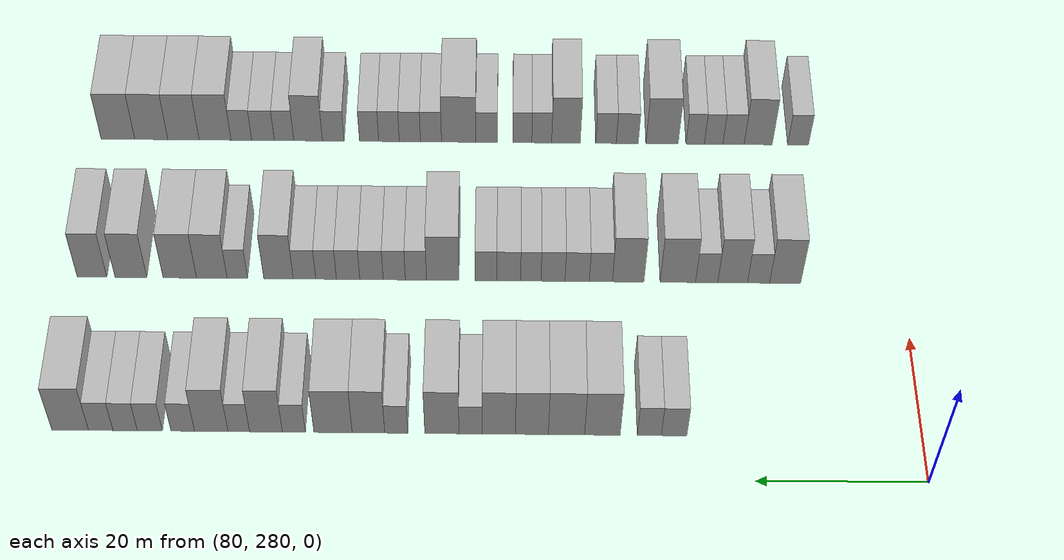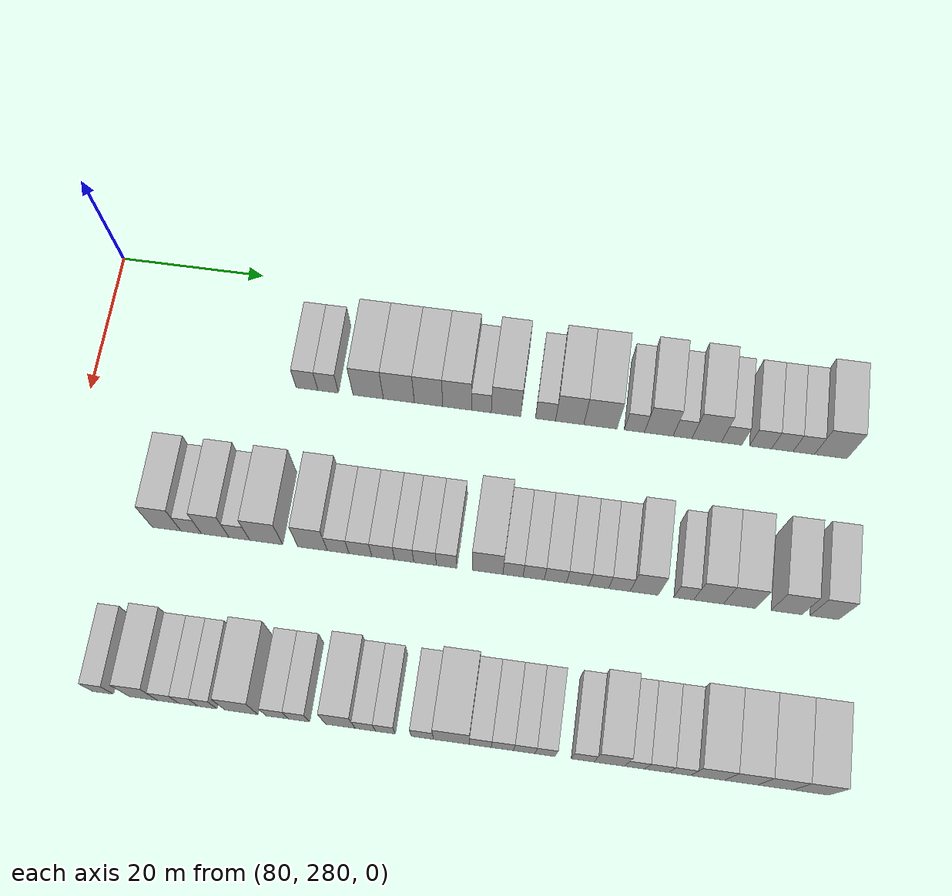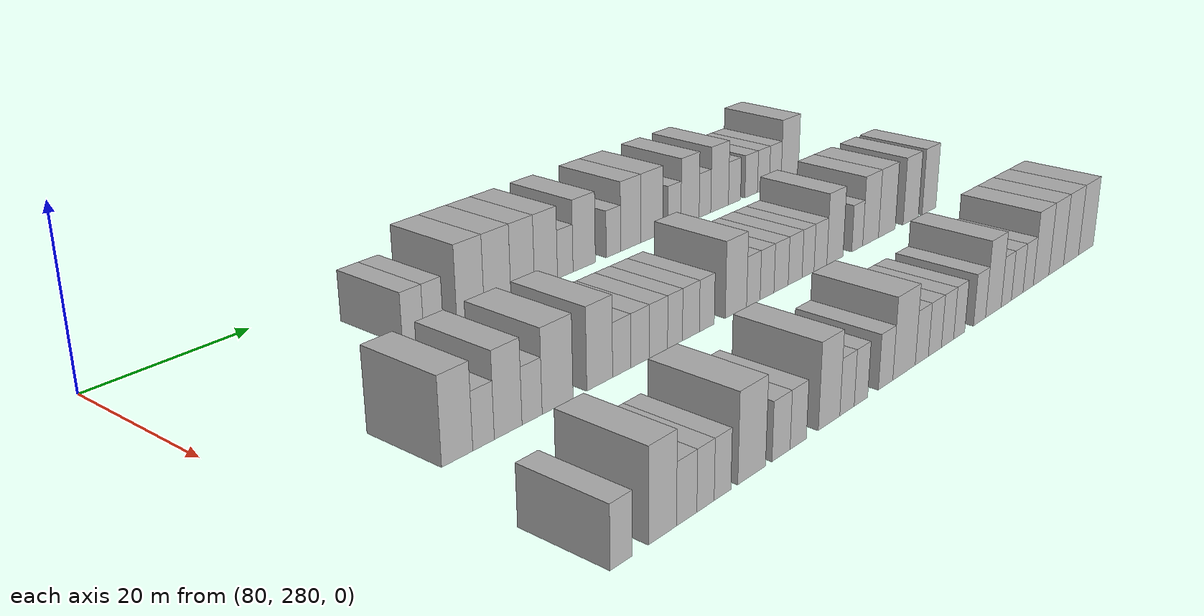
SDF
<sdf version="1.6">
 <world name="default">
  <model name="building_737">
   <static>1</static>
   <pose>91.0000 309.1152 0 0.000000 0.000000 0.000000</pose>
   <link name="link">
    <pose>0 0 3.00 0 0 0</pose>
    <collision name="collision"><geometry><box><size>10.0000 2.9916 6.0000</size></box></geometry></collision>
    <visual name="visual">
     <cast_shadows>0</cast_shadows>
     <geometry><box><size>10.0000 2.9916 6.0000</size></box></geometry>
     <material>
      <script>
       <uri>model://HANNAS_wall/materials/scripts</uri>
       <uri>model://HANNAS_wall/materials/textures</uri>
       <name>vrc/HANNAS_wall</name>
      </script>
     </material>
    </visual>
   </link>
  </model>
  <model name="building_738">
   <static>1</static>
   <pose>91.0000 312.0188 0 0.000000 0.000000 0.000000</pose>
   <link name="link">
    <pose>0 0 3.00 0 0 0</pose>
    <collision name="collision"><geometry><box><size>10.0000 2.8155 6.0000</size></box></geometry></collision>
    <visual name="visual">
     <cast_shadows>0</cast_shadows>
     <geometry><box><size>10.0000 2.8155 6.0000</size></box></geometry>
     <material>
      <script>
       <uri>model://HANNAS_wall/materials/scripts</uri>
       <uri>model://HANNAS_wall/materials/textures</uri>
       <name>vrc/HANNAS_wall</name>
      </script>
     </material>
    </visual>
   </link>
  </model>
  <model name="building_739">
   <static>1</static>
   <pose>91.0000 317.5095 0 0.000000 0.000000 0.000000</pose>
   <link name="link">
    <pose>0 0 4.50 0 0 0</pose>
    <collision name="collision"><geometry><box><size>10.0000 4.1660 9.0000</size></box></geometry></collision>
    <visual name="visual">
     <cast_shadows>0</cast_shadows>
     <geometry><box><size>10.0000 4.1660 9.0000</size></box></geometry>
     <material>
      <script>
       <uri>model://HANNAS_wall/materials/scripts</uri>
       <uri>model://HANNAS_wall/materials/textures</uri>
       <name>vrc/HANNAS_wall</name>
      </script>
     </material>
    </visual>
   </link>
  </model>
  <model name="building_740">
   <static>1</static>
   <pose>91.0000 321.7118 0 0.000000 0.000000 0.000000</pose>
   <link name="link">
    <pose>0 0 4.50 0 0 0</pose>
    <collision name="collision"><geometry><box><size>10.0000 4.2386 9.0000</size></box></geometry></collision>
    <visual name="visual">
     <cast_shadows>0</cast_shadows>
     <geometry><box><size>10.0000 4.2386 9.0000</size></box></geometry>
     <material>
      <script>
       <uri>model://HANNAS_wall/materials/scripts</uri>
       <uri>model://HANNAS_wall/materials/textures</uri>
       <name>vrc/HANNAS_wall</name>
      </script>
     </material>
    </visual>
   </link>
  </model>
  <model name="building_741">
   <static>1</static>
   <pose>91.0000 325.7674 0 0.000000 0.000000 0.000000</pose>
   <link name="link">
    <pose>0 0 4.50 0 0 0</pose>
    <collision name="collision"><geometry><box><size>10.0000 3.8725 9.0000</size></box></geometry></collision>
    <visual name="visual">
     <cast_shadows>0</cast_shadows>
     <geometry><box><size>10.0000 3.8725 9.0000</size></box></geometry>
     <material>
      <script>
       <uri>model://HANNAS_wall/materials/scripts</uri>
       <uri>model://HANNAS_wall/materials/textures</uri>
       <name>vrc/HANNAS_wall</name>
      </script>
     </material>
    </visual>
   </link>
  </model>
  <model name="building_742">
   <static>1</static>
   <pose>91.0000 329.6491 0 0.000000 0.000000 0.000000</pose>
   <link name="link">
    <pose>0 0 4.50 0 0 0</pose>
    <collision name="collision"><geometry><box><size>10.0000 3.8909 9.0000</size></box></geometry></collision>
    <visual name="visual">
     <cast_shadows>0</cast_shadows>
     <geometry><box><size>10.0000 3.8909 9.0000</size></box></geometry>
     <material>
      <script>
       <uri>model://HANNAS_wall/materials/scripts</uri>
       <uri>model://HANNAS_wall/materials/textures</uri>
       <name>vrc/HANNAS_wall</name>
      </script>
     </material>
    </visual>
   </link>
  </model>
  <model name="building_743">
   <static>1</static>
   <pose>91.0000 332.9498 0 0.000000 0.000000 0.000000</pose>
   <link name="link">
    <pose>0 0 3.00 0 0 0</pose>
    <collision name="collision"><geometry><box><size>10.0000 2.7106 6.0000</size></box></geometry></collision>
    <visual name="visual">
     <cast_shadows>0</cast_shadows>
     <geometry><box><size>10.0000 2.7106 6.0000</size></box></geometry>
     <material>
      <script>
       <uri>model://HANNAS_wall/materials/scripts</uri>
       <uri>model://HANNAS_wall/materials/textures</uri>
       <name>vrc/HANNAS_wall</name>
      </script>
     </material>
    </visual>
   </link>
  </model>
  <model name="building_744">
   <static>1</static>
   <pose>91.0000 336.3039 0 0.000000 0.000000 0.000000</pose>
   <link name="link">
    <pose>0 0 4.50 0 0 0</pose>
    <collision name="collision"><geometry><box><size>10.0000 3.9976 9.0000</size></box></geometry></collision>
    <visual name="visual">
     <cast_shadows>0</cast_shadows>
     <geometry><box><size>10.0000 3.9976 9.0000</size></box></geometry>
     <material>
      <script>
       <uri>model://HANNAS_wall/materials/scripts</uri>
       <uri>model://HANNAS_wall/materials/textures</uri>
       <name>vrc/HANNAS_wall</name>
      </script>
     </material>
    </visual>
   </link>
  </model>
  <model name="building_745">
   <static>1</static>
   <pose>91.0000 341.6554 0 0.000000 0.000000 0.000000</pose>
   <link name="link">
    <pose>0 0 3.00 0 0 0</pose>
    <collision name="collision"><geometry><box><size>10.0000 2.7054 6.0000</size></box></geometry></collision>
    <visual name="visual">
     <cast_shadows>0</cast_shadows>
     <geometry><box><size>10.0000 2.7054 6.0000</size></box></geometry>
     <material>
      <script>
       <uri>model://HANNAS_wall/materials/scripts</uri>
       <uri>model://HANNAS_wall/materials/textures</uri>
       <name>vrc/HANNAS_wall</name>
      </script>
     </material>
    </visual>
   </link>
  </model>
  <model name="building_746">
   <static>1</static>
   <pose>91.0000 344.9199 0 0.000000 0.000000 0.000000</pose>
   <link name="link">
    <pose>0 0 4.50 0 0 0</pose>
    <collision name="collision"><geometry><box><size>10.0000 3.8235 9.0000</size></box></geometry></collision>
    <visual name="visual">
     <cast_shadows>0</cast_shadows>
     <geometry><box><size>10.0000 3.8235 9.0000</size></box></geometry>
     <material>
      <script>
       <uri>model://HANNAS_wall/materials/scripts</uri>
       <uri>model://HANNAS_wall/materials/textures</uri>
       <name>vrc/HANNAS_wall</name>
      </script>
     </material>
    </visual>
   </link>
  </model>
  <model name="building_747">
   <static>1</static>
   <pose>91.0000 349.0684 0 0.000000 0.000000 0.000000</pose>
   <link name="link">
    <pose>0 0 4.50 0 0 0</pose>
    <collision name="collision"><geometry><box><size>10.0000 4.4735 9.0000</size></box></geometry></collision>
    <visual name="visual">
     <cast_shadows>0</cast_shadows>
     <geometry><box><size>10.0000 4.4735 9.0000</size></box></geometry>
     <material>
      <script>
       <uri>model://HANNAS_wall/materials/scripts</uri>
       <uri>model://HANNAS_wall/materials/textures</uri>
       <name>vrc/HANNAS_wall</name>
      </script>
     </material>
    </visual>
   </link>
  </model>
  <model name="building_748">
   <static>1</static>
   <pose>91.0000 353.6554 0 0.000000 0.000000 0.000000</pose>
   <link name="link">
    <pose>0 0 3.00 0 0 0</pose>
    <collision name="collision"><geometry><box><size>10.0000 2.7005 6.0000</size></box></geometry></collision>
    <visual name="visual">
     <cast_shadows>0</cast_shadows>
     <geometry><box><size>10.0000 2.7005 6.0000</size></box></geometry>
     <material>
      <script>
       <uri>model://HANNAS_wall/materials/scripts</uri>
       <uri>model://HANNAS_wall/materials/textures</uri>
       <name>vrc/HANNAS_wall</name>
      </script>
     </material>
    </visual>
   </link>
  </model>
  <model name="building_749">
   <static>1</static>
   <pose>91.0000 356.9288 0 0.000000 0.000000 0.000000</pose>
   <link name="link">
    <pose>0 0 4.50 0 0 0</pose>
    <collision name="collision"><geometry><box><size>10.0000 3.8464 9.0000</size></box></geometry></collision>
    <visual name="visual">
     <cast_shadows>0</cast_shadows>
     <geometry><box><size>10.0000 3.8464 9.0000</size></box></geometry>
     <material>
      <script>
       <uri>model://HANNAS_wall/materials/scripts</uri>
       <uri>model://HANNAS_wall/materials/textures</uri>
       <name>vrc/HANNAS_wall</name>
      </script>
     </material>
    </visual>
   </link>
  </model>
  <model name="building_750">
   <static>1</static>
   <pose>91.0000 360.1175 0 0.000000 0.000000 0.000000</pose>
   <link name="link">
    <pose>0 0 3.00 0 0 0</pose>
    <collision name="collision"><geometry><box><size>10.0000 2.5309 6.0000</size></box></geometry></collision>
    <visual name="visual">
     <cast_shadows>0</cast_shadows>
     <geometry><box><size>10.0000 2.5309 6.0000</size></box></geometry>
     <material>
      <script>
       <uri>model://HANNAS_wall/materials/scripts</uri>
       <uri>model://HANNAS_wall/materials/textures</uri>
       <name>vrc/HANNAS_wall</name>
      </script>
     </material>
    </visual>
   </link>
  </model>
  <model name="building_751">
   <static>1</static>
   <pose>91.0000 363.3502 0 0.000000 0.000000 0.000000</pose>
   <link name="link">
    <pose>0 0 4.50 0 0 0</pose>
    <collision name="collision"><geometry><box><size>10.0000 3.9344 9.0000</size></box></geometry></collision>
    <visual name="visual">
     <cast_shadows>0</cast_shadows>
     <geometry><box><size>10.0000 3.9344 9.0000</size></box></geometry>
     <material>
      <script>
       <uri>model://HANNAS_wall/materials/scripts</uri>
       <uri>model://HANNAS_wall/materials/textures</uri>
       <name>vrc/HANNAS_wall</name>
      </script>
     </material>
    </visual>
   </link>
  </model>
  <model name="building_752">
   <static>1</static>
   <pose>91.0000 366.7020 0 0.000000 0.000000 0.000000</pose>
   <link name="link">
    <pose>0 0 3.00 0 0 0</pose>
    <collision name="collision"><geometry><box><size>10.0000 2.7694 6.0000</size></box></geometry></collision>
    <visual name="visual">
     <cast_shadows>0</cast_shadows>
     <geometry><box><size>10.0000 2.7694 6.0000</size></box></geometry>
     <material>
      <script>
       <uri>model://HANNAS_wall/materials/scripts</uri>
       <uri>model://HANNAS_wall/materials/textures</uri>
       <name>vrc/HANNAS_wall</name>
      </script>
     </material>
    </visual>
   </link>
  </model>
  <model name="building_753">
   <static>1</static>
   <pose>91.0000 370.5611 0 0.000000 0.000000 0.000000</pose>
   <link name="link">
    <pose>0 0 3.00 0 0 0</pose>
    <collision name="collision"><geometry><box><size>10.0000 2.9487 6.0000</size></box></geometry></collision>
    <visual name="visual">
     <cast_shadows>0</cast_shadows>
     <geometry><box><size>10.0000 2.9487 6.0000</size></box></geometry>
     <material>
      <script>
       <uri>model://HANNAS_wall/materials/scripts</uri>
       <uri>model://HANNAS_wall/materials/textures</uri>
       <name>vrc/HANNAS_wall</name>
      </script>
     </material>
    </visual>
   </link>
  </model>
  <model name="building_754">
   <static>1</static>
   <pose>91.0000 373.4642 0 0.000000 0.000000 0.000000</pose>
   <link name="link">
    <pose>0 0 3.00 0 0 0</pose>
    <collision name="collision"><geometry><box><size>10.0000 2.8574 6.0000</size></box></geometry></collision>
    <visual name="visual">
     <cast_shadows>0</cast_shadows>
     <geometry><box><size>10.0000 2.8574 6.0000</size></box></geometry>
     <material>
      <script>
       <uri>model://HANNAS_wall/materials/scripts</uri>
       <uri>model://HANNAS_wall/materials/textures</uri>
       <name>vrc/HANNAS_wall</name>
      </script>
     </material>
    </visual>
   </link>
  </model>
  <model name="building_755">
   <static>1</static>
   <pose>91.0000 376.3297 0 0.000000 0.000000 0.000000</pose>
   <link name="link">
    <pose>0 0 3.00 0 0 0</pose>
    <collision name="collision"><geometry><box><size>10.0000 2.8737 6.0000</size></box></geometry></collision>
    <visual name="visual">
     <cast_shadows>0</cast_shadows>
     <geometry><box><size>10.0000 2.8737 6.0000</size></box></geometry>
     <material>
      <script>
       <uri>model://HANNAS_wall/materials/scripts</uri>
       <uri>model://HANNAS_wall/materials/textures</uri>
       <name>vrc/HANNAS_wall</name>
      </script>
     </material>
    </visual>
   </link>
  </model>
  <model name="building_756">
   <static>1</static>
   <pose>91.0000 379.9268 0 0.000000 0.000000 0.000000</pose>
   <link name="link">
    <pose>0 0 4.50 0 0 0</pose>
    <collision name="collision"><geometry><box><size>10.0000 4.3204 9.0000</size></box></geometry></collision>
    <visual name="visual">
     <cast_shadows>0</cast_shadows>
     <geometry><box><size>10.0000 4.3204 9.0000</size></box></geometry>
     <material>
      <script>
       <uri>model://HANNAS_wall/materials/scripts</uri>
       <uri>model://HANNAS_wall/materials/textures</uri>
       <name>vrc/HANNAS_wall</name>
      </script>
     </material>
    </visual>
   </link>
  </model>
  <model name="building_928">
   <static>1</static>
   <pose>113.0000 294.4812 0 0.000000 0.000000 0.000000</pose>
   <link name="link">
    <pose>0 0 4.50 0 0 0</pose>
    <collision name="collision"><geometry><box><size>10.0000 3.8361 9.0000</size></box></geometry></collision>
    <visual name="visual">
     <cast_shadows>0</cast_shadows>
     <geometry><box><size>10.0000 3.8361 9.0000</size></box></geometry>
     <material>
      <script>
       <uri>model://HANNAS_wall/materials/scripts</uri>
       <uri>model://HANNAS_wall/materials/textures</uri>
       <name>vrc/HANNAS_wall</name>
      </script>
     </material>
    </visual>
   </link>
  </model>
  <model name="building_929">
   <static>1</static>
   <pose>113.0000 297.7650 0 0.000000 0.000000 0.000000</pose>
   <link name="link">
    <pose>0 0 3.00 0 0 0</pose>
    <collision name="collision"><geometry><box><size>10.0000 2.7315 6.0000</size></box></geometry></collision>
    <visual name="visual">
     <cast_shadows>0</cast_shadows>
     <geometry><box><size>10.0000 2.7315 6.0000</size></box></geometry>
     <material>
      <script>
       <uri>model://HANNAS_wall/materials/scripts</uri>
       <uri>model://HANNAS_wall/materials/textures</uri>
       <name>vrc/HANNAS_wall</name>
      </script>
     </material>
    </visual>
   </link>
  </model>
  <model name="building_930">
   <static>1</static>
   <pose>113.0000 300.9545 0 0.000000 0.000000 0.000000</pose>
   <link name="link">
    <pose>0 0 4.50 0 0 0</pose>
    <collision name="collision"><geometry><box><size>10.0000 3.6475 9.0000</size></box></geometry></collision>
    <visual name="visual">
     <cast_shadows>0</cast_shadows>
     <geometry><box><size>10.0000 3.6475 9.0000</size></box></geometry>
     <material>
      <script>
       <uri>model://HANNAS_wall/materials/scripts</uri>
       <uri>model://HANNAS_wall/materials/textures</uri>
       <name>vrc/HANNAS_wall</name>
      </script>
     </material>
    </visual>
   </link>
  </model>
  <model name="building_931">
   <static>1</static>
   <pose>113.0000 304.1502 0 0.000000 0.000000 0.000000</pose>
   <link name="link">
    <pose>0 0 3.00 0 0 0</pose>
    <collision name="collision"><geometry><box><size>10.0000 2.7439 6.0000</size></box></geometry></collision>
    <visual name="visual">
     <cast_shadows>0</cast_shadows>
     <geometry><box><size>10.0000 2.7439 6.0000</size></box></geometry>
     <material>
      <script>
       <uri>model://HANNAS_wall/materials/scripts</uri>
       <uri>model://HANNAS_wall/materials/textures</uri>
       <name>vrc/HANNAS_wall</name>
      </script>
     </material>
    </visual>
   </link>
  </model>
  <model name="building_932">
   <static>1</static>
   <pose>113.0000 307.7069 0 0.000000 0.000000 0.000000</pose>
   <link name="link">
    <pose>0 0 4.50 0 0 0</pose>
    <collision name="collision"><geometry><box><size>10.0000 4.3695 9.0000</size></box></geometry></collision>
    <visual name="visual">
     <cast_shadows>0</cast_shadows>
     <geometry><box><size>10.0000 4.3695 9.0000</size></box></geometry>
     <material>
      <script>
       <uri>model://HANNAS_wall/materials/scripts</uri>
       <uri>model://HANNAS_wall/materials/textures</uri>
       <name>vrc/HANNAS_wall</name>
      </script>
     </material>
    </visual>
   </link>
  </model>
  <model name="building_933">
   <static>1</static>
   <pose>113.0000 313.8389 0 0.000000 0.000000 0.000000</pose>
   <link name="link">
    <pose>0 0 4.50 0 0 0</pose>
    <collision name="collision"><geometry><box><size>10.0000 3.8944 9.0000</size></box></geometry></collision>
    <visual name="visual">
     <cast_shadows>0</cast_shadows>
     <geometry><box><size>10.0000 3.8944 9.0000</size></box></geometry>
     <material>
      <script>
       <uri>model://HANNAS_wall/materials/scripts</uri>
       <uri>model://HANNAS_wall/materials/textures</uri>
       <name>vrc/HANNAS_wall</name>
      </script>
     </material>
    </visual>
   </link>
  </model>
  <model name="building_934">
   <static>1</static>
   <pose>113.0000 317.2094 0 0.000000 0.000000 0.000000</pose>
   <link name="link">
    <pose>0 0 3.00 0 0 0</pose>
    <collision name="collision"><geometry><box><size>10.0000 2.8466 6.0000</size></box></geometry></collision>
    <visual name="visual">
     <cast_shadows>0</cast_shadows>
     <geometry><box><size>10.0000 2.8466 6.0000</size></box></geometry>
     <material>
      <script>
       <uri>model://HANNAS_wall/materials/scripts</uri>
       <uri>model://HANNAS_wall/materials/textures</uri>
       <name>vrc/HANNAS_wall</name>
      </script>
     </material>
    </visual>
   </link>
  </model>
  <model name="building_935">
   <static>1</static>
   <pose>113.0000 320.1281 0 0.000000 0.000000 0.000000</pose>
   <link name="link">
    <pose>0 0 3.00 0 0 0</pose>
    <collision name="collision"><geometry><box><size>10.0000 2.9910 6.0000</size></box></geometry></collision>
    <visual name="visual">
     <cast_shadows>0</cast_shadows>
     <geometry><box><size>10.0000 2.9910 6.0000</size></box></geometry>
     <material>
      <script>
       <uri>model://HANNAS_wall/materials/scripts</uri>
       <uri>model://HANNAS_wall/materials/textures</uri>
       <name>vrc/HANNAS_wall</name>
      </script>
     </material>
    </visual>
   </link>
  </model>
  <model name="building_936">
   <static>1</static>
   <pose>113.0000 323.1129 0 0.000000 0.000000 0.000000</pose>
   <link name="link">
    <pose>0 0 3.00 0 0 0</pose>
    <collision name="collision"><geometry><box><size>10.0000 2.9786 6.0000</size></box></geometry></collision>
    <visual name="visual">
     <cast_shadows>0</cast_shadows>
     <geometry><box><size>10.0000 2.9786 6.0000</size></box></geometry>
     <material>
      <script>
       <uri>model://HANNAS_wall/materials/scripts</uri>
       <uri>model://HANNAS_wall/materials/textures</uri>
       <name>vrc/HANNAS_wall</name>
      </script>
     </material>
    </visual>
   </link>
  </model>
  <model name="building_937">
   <static>1</static>
   <pose>113.0000 325.8634 0 0.000000 0.000000 0.000000</pose>
   <link name="link">
    <pose>0 0 3.00 0 0 0</pose>
    <collision name="collision"><geometry><box><size>10.0000 2.5224 6.0000</size></box></geometry></collision>
    <visual name="visual">
     <cast_shadows>0</cast_shadows>
     <geometry><box><size>10.0000 2.5224 6.0000</size></box></geometry>
     <material>
      <script>
       <uri>model://HANNAS_wall/materials/scripts</uri>
       <uri>model://HANNAS_wall/materials/textures</uri>
       <name>vrc/HANNAS_wall</name>
      </script>
     </material>
    </visual>
   </link>
  </model>
  <model name="building_938">
   <static>1</static>
   <pose>113.0000 328.5968 0 0.000000 0.000000 0.000000</pose>
   <link name="link">
    <pose>0 0 3.00 0 0 0</pose>
    <collision name="collision"><geometry><box><size>10.0000 2.9442 6.0000</size></box></geometry></collision>
    <visual name="visual">
     <cast_shadows>0</cast_shadows>
     <geometry><box><size>10.0000 2.9442 6.0000</size></box></geometry>
     <material>
      <script>
       <uri>model://HANNAS_wall/materials/scripts</uri>
       <uri>model://HANNAS_wall/materials/textures</uri>
       <name>vrc/HANNAS_wall</name>
      </script>
     </material>
    </visual>
   </link>
  </model>
  <model name="building_939">
   <static>1</static>
   <pose>113.0000 331.4020 0 0.000000 0.000000 0.000000</pose>
   <link name="link">
    <pose>0 0 3.00 0 0 0</pose>
    <collision name="collision"><geometry><box><size>10.0000 2.6662 6.0000</size></box></geometry></collision>
    <visual name="visual">
     <cast_shadows>0</cast_shadows>
     <geometry><box><size>10.0000 2.6662 6.0000</size></box></geometry>
     <material>
      <script>
       <uri>model://HANNAS_wall/materials/scripts</uri>
       <uri>model://HANNAS_wall/materials/textures</uri>
       <name>vrc/HANNAS_wall</name>
      </script>
     </material>
    </visual>
   </link>
  </model>
  <model name="building_940">
   <static>1</static>
   <pose>113.0000 336.7377 0 0.000000 0.000000 0.000000</pose>
   <link name="link">
    <pose>0 0 4.50 0 0 0</pose>
    <collision name="collision"><geometry><box><size>10.0000 4.0051 9.0000</size></box></geometry></collision>
    <visual name="visual">
     <cast_shadows>0</cast_shadows>
     <geometry><box><size>10.0000 4.0051 9.0000</size></box></geometry>
     <material>
      <script>
       <uri>model://HANNAS_wall/materials/scripts</uri>
       <uri>model://HANNAS_wall/materials/textures</uri>
       <name>vrc/HANNAS_wall</name>
      </script>
     </material>
    </visual>
   </link>
  </model>
  <model name="building_941">
   <static>1</static>
   <pose>113.0000 340.0426 0 0.000000 0.000000 0.000000</pose>
   <link name="link">
    <pose>0 0 3.00 0 0 0</pose>
    <collision name="collision"><geometry><box><size>10.0000 2.6046 6.0000</size></box></geometry></collision>
    <visual name="visual">
     <cast_shadows>0</cast_shadows>
     <geometry><box><size>10.0000 2.6046 6.0000</size></box></geometry>
     <material>
      <script>
       <uri>model://HANNAS_wall/materials/scripts</uri>
       <uri>model://HANNAS_wall/materials/textures</uri>
       <name>vrc/HANNAS_wall</name>
      </script>
     </material>
    </visual>
   </link>
  </model>
  <model name="building_942">
   <static>1</static>
   <pose>113.0000 342.7191 0 0.000000 0.000000 0.000000</pose>
   <link name="link">
    <pose>0 0 3.00 0 0 0</pose>
    <collision name="collision"><geometry><box><size>10.0000 2.7484 6.0000</size></box></geometry></collision>
    <visual name="visual">
     <cast_shadows>0</cast_shadows>
     <geometry><box><size>10.0000 2.7484 6.0000</size></box></geometry>
     <material>
      <script>
       <uri>model://HANNAS_wall/materials/scripts</uri>
       <uri>model://HANNAS_wall/materials/textures</uri>
       <name>vrc/HANNAS_wall</name>
      </script>
     </material>
    </visual>
   </link>
  </model>
  <model name="building_943">
   <static>1</static>
   <pose>113.0000 345.5380 0 0.000000 0.000000 0.000000</pose>
   <link name="link">
    <pose>0 0 3.00 0 0 0</pose>
    <collision name="collision"><geometry><box><size>10.0000 2.8893 6.0000</size></box></geometry></collision>
    <visual name="visual">
     <cast_shadows>0</cast_shadows>
     <geometry><box><size>10.0000 2.8893 6.0000</size></box></geometry>
     <material>
      <script>
       <uri>model://HANNAS_wall/materials/scripts</uri>
       <uri>model://HANNAS_wall/materials/textures</uri>
       <name>vrc/HANNAS_wall</name>
      </script>
     </material>
    </visual>
   </link>
  </model>
  <model name="building_944">
   <static>1</static>
   <pose>113.0000 348.4279 0 0.000000 0.000000 0.000000</pose>
   <link name="link">
    <pose>0 0 3.00 0 0 0</pose>
    <collision name="collision"><geometry><box><size>10.0000 2.8906 6.0000</size></box></geometry></collision>
    <visual name="visual">
     <cast_shadows>0</cast_shadows>
     <geometry><box><size>10.0000 2.8906 6.0000</size></box></geometry>
     <material>
      <script>
       <uri>model://HANNAS_wall/materials/scripts</uri>
       <uri>model://HANNAS_wall/materials/textures</uri>
       <name>vrc/HANNAS_wall</name>
      </script>
     </material>
    </visual>
   </link>
  </model>
  <model name="building_945">
   <static>1</static>
   <pose>113.0000 351.1479 0 0.000000 0.000000 0.000000</pose>
   <link name="link">
    <pose>0 0 3.00 0 0 0</pose>
    <collision name="collision"><geometry><box><size>10.0000 2.5495 6.0000</size></box></geometry></collision>
    <visual name="visual">
     <cast_shadows>0</cast_shadows>
     <geometry><box><size>10.0000 2.5495 6.0000</size></box></geometry>
     <material>
      <script>
       <uri>model://HANNAS_wall/materials/scripts</uri>
       <uri>model://HANNAS_wall/materials/textures</uri>
       <name>vrc/HANNAS_wall</name>
      </script>
     </material>
    </visual>
   </link>
  </model>
  <model name="building_946">
   <static>1</static>
   <pose>113.0000 353.8186 0 0.000000 0.000000 0.000000</pose>
   <link name="link">
    <pose>0 0 3.00 0 0 0</pose>
    <collision name="collision"><geometry><box><size>10.0000 2.7919 6.0000</size></box></geometry></collision>
    <visual name="visual">
     <cast_shadows>0</cast_shadows>
     <geometry><box><size>10.0000 2.7919 6.0000</size></box></geometry>
     <material>
      <script>
       <uri>model://HANNAS_wall/materials/scripts</uri>
       <uri>model://HANNAS_wall/materials/textures</uri>
       <name>vrc/HANNAS_wall</name>
      </script>
     </material>
    </visual>
   </link>
  </model>
  <model name="building_947">
   <static>1</static>
   <pose>113.0000 357.0328 0 0.000000 0.000000 0.000000</pose>
   <link name="link">
    <pose>0 0 4.50 0 0 0</pose>
    <collision name="collision"><geometry><box><size>10.0000 3.6365 9.0000</size></box></geometry></collision>
    <visual name="visual">
     <cast_shadows>0</cast_shadows>
     <geometry><box><size>10.0000 3.6365 9.0000</size></box></geometry>
     <material>
      <script>
       <uri>model://HANNAS_wall/materials/scripts</uri>
       <uri>model://HANNAS_wall/materials/textures</uri>
       <name>vrc/HANNAS_wall</name>
      </script>
     </material>
    </visual>
   </link>
  </model>
  <model name="building_948">
   <static>1</static>
   <pose>113.0000 362.1231 0 0.000000 0.000000 0.000000</pose>
   <link name="link">
    <pose>0 0 3.00 0 0 0</pose>
    <collision name="collision"><geometry><box><size>10.0000 2.5441 6.0000</size></box></geometry></collision>
    <visual name="visual">
     <cast_shadows>0</cast_shadows>
     <geometry><box><size>10.0000 2.5441 6.0000</size></box></geometry>
     <material>
      <script>
       <uri>model://HANNAS_wall/materials/scripts</uri>
       <uri>model://HANNAS_wall/materials/textures</uri>
       <name>vrc/HANNAS_wall</name>
      </script>
     </material>
    </visual>
   </link>
  </model>
  <model name="building_949">
   <static>1</static>
   <pose>113.0000 365.2894 0 0.000000 0.000000 0.000000</pose>
   <link name="link">
    <pose>0 0 4.50 0 0 0</pose>
    <collision name="collision"><geometry><box><size>10.0000 3.7884 9.0000</size></box></geometry></collision>
    <visual name="visual">
     <cast_shadows>0</cast_shadows>
     <geometry><box><size>10.0000 3.7884 9.0000</size></box></geometry>
     <material>
      <script>
       <uri>model://HANNAS_wall/materials/scripts</uri>
       <uri>model://HANNAS_wall/materials/textures</uri>
       <name>vrc/HANNAS_wall</name>
      </script>
     </material>
    </visual>
   </link>
  </model>
  <model name="building_950">
   <static>1</static>
   <pose>113.0000 369.2505 0 0.000000 0.000000 0.000000</pose>
   <link name="link">
    <pose>0 0 4.50 0 0 0</pose>
    <collision name="collision"><geometry><box><size>10.0000 4.1339 9.0000</size></box></geometry></collision>
    <visual name="visual">
     <cast_shadows>0</cast_shadows>
     <geometry><box><size>10.0000 4.1339 9.0000</size></box></geometry>
     <material>
      <script>
       <uri>model://HANNAS_wall/materials/scripts</uri>
       <uri>model://HANNAS_wall/materials/textures</uri>
       <name>vrc/HANNAS_wall</name>
      </script>
     </material>
    </visual>
   </link>
  </model>
  <model name="building_951">
   <static>1</static>
   <pose>113.0000 375.2906 0 0.000000 0.000000 0.000000</pose>
   <link name="link">
    <pose>0 0 4.50 0 0 0</pose>
    <collision name="collision"><geometry><box><size>10.0000 3.9463 9.0000</size></box></geometry></collision>
    <visual name="visual">
     <cast_shadows>0</cast_shadows>
     <geometry><box><size>10.0000 3.9463 9.0000</size></box></geometry>
     <material>
      <script>
       <uri>model://HANNAS_wall/materials/scripts</uri>
       <uri>model://HANNAS_wall/materials/textures</uri>
       <name>vrc/HANNAS_wall</name>
      </script>
     </material>
    </visual>
   </link>
  </model>
  <model name="building_952">
   <static>1</static>
   <pose>113.0000 380.1030 0 0.000000 0.000000 0.000000</pose>
   <link name="link">
    <pose>0 0 4.50 0 0 0</pose>
    <collision name="collision"><geometry><box><size>10.0000 3.6785 9.0000</size></box></geometry></collision>
    <visual name="visual">
     <cast_shadows>0</cast_shadows>
     <geometry><box><size>10.0000 3.6785 9.0000</size></box></geometry>
     <material>
      <script>
       <uri>model://HANNAS_wall/materials/scripts</uri>
       <uri>model://HANNAS_wall/materials/textures</uri>
       <name>vrc/HANNAS_wall</name>
      </script>
     </material>
    </visual>
   </link>
  </model>
  <model name="building_1116">
   <static>1</static>
   <pose>135.0000 291.1325 0 0.000000 0.000000 0.000000</pose>
   <link name="link">
    <pose>0 0 3.00 0 0 0</pose>
    <collision name="collision"><geometry><box><size>10.0000 2.7108 6.0000</size></box></geometry></collision>
    <visual name="visual">
     <cast_shadows>0</cast_shadows>
     <geometry><box><size>10.0000 2.7108 6.0000</size></box></geometry>
     <material>
      <script>
       <uri>model://HANNAS_wall/materials/scripts</uri>
       <uri>model://HANNAS_wall/materials/textures</uri>
       <name>vrc/HANNAS_wall</name>
      </script>
     </material>
    </visual>
   </link>
  </model>
  <model name="building_1117">
   <static>1</static>
   <pose>135.0000 296.3117 0 0.000000 0.000000 0.000000</pose>
   <link name="link">
    <pose>0 0 4.50 0 0 0</pose>
    <collision name="collision"><geometry><box><size>10.0000 3.6474 9.0000</size></box></geometry></collision>
    <visual name="visual">
     <cast_shadows>0</cast_shadows>
     <geometry><box><size>10.0000 3.6474 9.0000</size></box></geometry>
     <material>
      <script>
       <uri>model://HANNAS_wall/materials/scripts</uri>
       <uri>model://HANNAS_wall/materials/textures</uri>
       <name>vrc/HANNAS_wall</name>
      </script>
     </material>
    </visual>
   </link>
  </model>
  <model name="building_1118">
   <static>1</static>
   <pose>135.0000 299.5085 0 0.000000 0.000000 0.000000</pose>
   <link name="link">
    <pose>0 0 3.00 0 0 0</pose>
    <collision name="collision"><geometry><box><size>10.0000 2.7462 6.0000</size></box></geometry></collision>
    <visual name="visual">
     <cast_shadows>0</cast_shadows>
     <geometry><box><size>10.0000 2.7462 6.0000</size></box></geometry>
     <material>
      <script>
       <uri>model://HANNAS_wall/materials/scripts</uri>
       <uri>model://HANNAS_wall/materials/textures</uri>
       <name>vrc/HANNAS_wall</name>
      </script>
     </material>
    </visual>
   </link>
  </model>
  <model name="building_1119">
   <static>1</static>
   <pose>135.0000 302.0843 0 0.000000 0.000000 0.000000</pose>
   <link name="link">
    <pose>0 0 3.00 0 0 0</pose>
    <collision name="collision"><geometry><box><size>10.0000 2.4054 6.0000</size></box></geometry></collision>
    <visual name="visual">
     <cast_shadows>0</cast_shadows>
     <geometry><box><size>10.0000 2.4054 6.0000</size></box></geometry>
     <material>
      <script>
       <uri>model://HANNAS_wall/materials/scripts</uri>
       <uri>model://HANNAS_wall/materials/textures</uri>
       <name>vrc/HANNAS_wall</name>
      </script>
     </material>
    </visual>
   </link>
  </model>
  <model name="building_1120">
   <static>1</static>
   <pose>135.0000 304.4876 0 0.000000 0.000000 0.000000</pose>
   <link name="link">
    <pose>0 0 3.00 0 0 0</pose>
    <collision name="collision"><geometry><box><size>10.0000 2.4013 6.0000</size></box></geometry></collision>
    <visual name="visual">
     <cast_shadows>0</cast_shadows>
     <geometry><box><size>10.0000 2.4013 6.0000</size></box></geometry>
     <material>
      <script>
       <uri>model://HANNAS_wall/materials/scripts</uri>
       <uri>model://HANNAS_wall/materials/textures</uri>
       <name>vrc/HANNAS_wall</name>
      </script>
     </material>
    </visual>
   </link>
  </model>
  <model name="building_1121">
   <static>1</static>
   <pose>135.0000 308.7812 0 0.000000 0.000000 0.000000</pose>
   <link name="link">
    <pose>0 0 4.50 0 0 0</pose>
    <collision name="collision"><geometry><box><size>10.0000 4.1860 9.0000</size></box></geometry></collision>
    <visual name="visual">
     <cast_shadows>0</cast_shadows>
     <geometry><box><size>10.0000 4.1860 9.0000</size></box></geometry>
     <material>
      <script>
       <uri>model://HANNAS_wall/materials/scripts</uri>
       <uri>model://HANNAS_wall/materials/textures</uri>
       <name>vrc/HANNAS_wall</name>
      </script>
     </material>
    </visual>
   </link>
  </model>
  <model name="building_1122">
   <static>1</static>
   <pose>135.0000 313.3041 0 0.000000 0.000000 0.000000</pose>
   <link name="link">
    <pose>0 0 3.00 0 0 0</pose>
    <collision name="collision"><geometry><box><size>10.0000 2.8599 6.0000</size></box></geometry></collision>
    <visual name="visual">
     <cast_shadows>0</cast_shadows>
     <geometry><box><size>10.0000 2.8599 6.0000</size></box></geometry>
     <material>
      <script>
       <uri>model://HANNAS_wall/materials/scripts</uri>
       <uri>model://HANNAS_wall/materials/textures</uri>
       <name>vrc/HANNAS_wall</name>
      </script>
     </material>
    </visual>
   </link>
  </model>
  <model name="building_1123">
   <static>1</static>
   <pose>135.0000 316.0684 0 0.000000 0.000000 0.000000</pose>
   <link name="link">
    <pose>0 0 3.00 0 0 0</pose>
    <collision name="collision"><geometry><box><size>10.0000 2.6685 6.0000</size></box></geometry></collision>
    <visual name="visual">
     <cast_shadows>0</cast_shadows>
     <geometry><box><size>10.0000 2.6685 6.0000</size></box></geometry>
     <material>
      <script>
       <uri>model://HANNAS_wall/materials/scripts</uri>
       <uri>model://HANNAS_wall/materials/textures</uri>
       <name>vrc/HANNAS_wall</name>
      </script>
     </material>
    </visual>
   </link>
  </model>
  <model name="building_1124">
   <static>1</static>
   <pose>135.0000 321.2627 0 0.000000 0.000000 0.000000</pose>
   <link name="link">
    <pose>0 0 4.50 0 0 0</pose>
    <collision name="collision"><geometry><box><size>10.0000 3.7202 9.0000</size></box></geometry></collision>
    <visual name="visual">
     <cast_shadows>0</cast_shadows>
     <geometry><box><size>10.0000 3.7202 9.0000</size></box></geometry>
     <material>
      <script>
       <uri>model://HANNAS_wall/materials/scripts</uri>
       <uri>model://HANNAS_wall/materials/textures</uri>
       <name>vrc/HANNAS_wall</name>
      </script>
     </material>
    </visual>
   </link>
  </model>
  <model name="building_1125">
   <static>1</static>
   <pose>135.0000 324.4075 0 0.000000 0.000000 0.000000</pose>
   <link name="link">
    <pose>0 0 3.00 0 0 0</pose>
    <collision name="collision"><geometry><box><size>10.0000 2.5693 6.0000</size></box></geometry></collision>
    <visual name="visual">
     <cast_shadows>0</cast_shadows>
     <geometry><box><size>10.0000 2.5693 6.0000</size></box></geometry>
     <material>
      <script>
       <uri>model://HANNAS_wall/materials/scripts</uri>
       <uri>model://HANNAS_wall/materials/textures</uri>
       <name>vrc/HANNAS_wall</name>
      </script>
     </material>
    </visual>
   </link>
  </model>
  <model name="building_1126">
   <static>1</static>
   <pose>135.0000 326.9320 0 0.000000 0.000000 0.000000</pose>
   <link name="link">
    <pose>0 0 3.00 0 0 0</pose>
    <collision name="collision"><geometry><box><size>10.0000 2.4797 6.0000</size></box></geometry></collision>
    <visual name="visual">
     <cast_shadows>0</cast_shadows>
     <geometry><box><size>10.0000 2.4797 6.0000</size></box></geometry>
     <material>
      <script>
       <uri>model://HANNAS_wall/materials/scripts</uri>
       <uri>model://HANNAS_wall/materials/textures</uri>
       <name>vrc/HANNAS_wall</name>
      </script>
     </material>
    </visual>
   </link>
  </model>
  <model name="building_1127">
   <static>1</static>
   <pose>135.0000 331.5645 0 0.000000 0.000000 0.000000</pose>
   <link name="link">
    <pose>0 0 3.00 0 0 0</pose>
    <collision name="collision"><geometry><box><size>10.0000 2.7854 6.0000</size></box></geometry></collision>
    <visual name="visual">
     <cast_shadows>0</cast_shadows>
     <geometry><box><size>10.0000 2.7854 6.0000</size></box></geometry>
     <material>
      <script>
       <uri>model://HANNAS_wall/materials/scripts</uri>
       <uri>model://HANNAS_wall/materials/textures</uri>
       <name>vrc/HANNAS_wall</name>
      </script>
     </material>
    </visual>
   </link>
  </model>
  <model name="building_1128">
   <static>1</static>
   <pose>135.0000 335.1892 0 0.000000 0.000000 0.000000</pose>
   <link name="link">
    <pose>0 0 4.50 0 0 0</pose>
    <collision name="collision"><geometry><box><size>10.0000 4.4640 9.0000</size></box></geometry></collision>
    <visual name="visual">
     <cast_shadows>0</cast_shadows>
     <geometry><box><size>10.0000 4.4640 9.0000</size></box></geometry>
     <material>
      <script>
       <uri>model://HANNAS_wall/materials/scripts</uri>
       <uri>model://HANNAS_wall/materials/textures</uri>
       <name>vrc/HANNAS_wall</name>
      </script>
     </material>
    </visual>
   </link>
  </model>
  <model name="building_1129">
   <static>1</static>
   <pose>135.0000 338.7842 0 0.000000 0.000000 0.000000</pose>
   <link name="link">
    <pose>0 0 3.00 0 0 0</pose>
    <collision name="collision"><geometry><box><size>10.0000 2.7260 6.0000</size></box></geometry></collision>
    <visual name="visual">
     <cast_shadows>0</cast_shadows>
     <geometry><box><size>10.0000 2.7260 6.0000</size></box></geometry>
     <material>
      <script>
       <uri>model://HANNAS_wall/materials/scripts</uri>
       <uri>model://HANNAS_wall/materials/textures</uri>
       <name>vrc/HANNAS_wall</name>
      </script>
     </material>
    </visual>
   </link>
  </model>
  <model name="building_1130">
   <static>1</static>
   <pose>135.0000 341.5293 0 0.000000 0.000000 0.000000</pose>
   <link name="link">
    <pose>0 0 3.00 0 0 0</pose>
    <collision name="collision"><geometry><box><size>10.0000 2.7642 6.0000</size></box></geometry></collision>
    <visual name="visual">
     <cast_shadows>0</cast_shadows>
     <geometry><box><size>10.0000 2.7642 6.0000</size></box></geometry>
     <material>
      <script>
       <uri>model://HANNAS_wall/materials/scripts</uri>
       <uri>model://HANNAS_wall/materials/textures</uri>
       <name>vrc/HANNAS_wall</name>
      </script>
     </material>
    </visual>
   </link>
  </model>
  <model name="building_1131">
   <static>1</static>
   <pose>135.0000 344.2423 0 0.000000 0.000000 0.000000</pose>
   <link name="link">
    <pose>0 0 3.00 0 0 0</pose>
    <collision name="collision"><geometry><box><size>10.0000 2.6617 6.0000</size></box></geometry></collision>
    <visual name="visual">
     <cast_shadows>0</cast_shadows>
     <geometry><box><size>10.0000 2.6617 6.0000</size></box></geometry>
     <material>
      <script>
       <uri>model://HANNAS_wall/materials/scripts</uri>
       <uri>model://HANNAS_wall/materials/textures</uri>
       <name>vrc/HANNAS_wall</name>
      </script>
     </material>
    </visual>
   </link>
  </model>
  <model name="building_1132">
   <static>1</static>
   <pose>135.0000 346.8203 0 0.000000 0.000000 0.000000</pose>
   <link name="link">
    <pose>0 0 3.00 0 0 0</pose>
    <collision name="collision"><geometry><box><size>10.0000 2.4943 6.0000</size></box></geometry></collision>
    <visual name="visual">
     <cast_shadows>0</cast_shadows>
     <geometry><box><size>10.0000 2.4943 6.0000</size></box></geometry>
     <material>
      <script>
       <uri>model://HANNAS_wall/materials/scripts</uri>
       <uri>model://HANNAS_wall/materials/textures</uri>
       <name>vrc/HANNAS_wall</name>
      </script>
     </material>
    </visual>
   </link>
  </model>
  <model name="building_1133">
   <static>1</static>
   <pose>135.0000 351.4767 0 0.000000 0.000000 0.000000</pose>
   <link name="link">
    <pose>0 0 3.00 0 0 0</pose>
    <collision name="collision"><geometry><box><size>10.0000 2.8185 6.0000</size></box></geometry></collision>
    <visual name="visual">
     <cast_shadows>0</cast_shadows>
     <geometry><box><size>10.0000 2.8185 6.0000</size></box></geometry>
     <material>
      <script>
       <uri>model://HANNAS_wall/materials/scripts</uri>
       <uri>model://HANNAS_wall/materials/textures</uri>
       <name>vrc/HANNAS_wall</name>
      </script>
     </material>
    </visual>
   </link>
  </model>
  <model name="building_1134">
   <static>1</static>
   <pose>135.0000 354.7562 0 0.000000 0.000000 0.000000</pose>
   <link name="link">
    <pose>0 0 4.50 0 0 0</pose>
    <collision name="collision"><geometry><box><size>10.0000 3.7405 9.0000</size></box></geometry></collision>
    <visual name="visual">
     <cast_shadows>0</cast_shadows>
     <geometry><box><size>10.0000 3.7405 9.0000</size></box></geometry>
     <material>
      <script>
       <uri>model://HANNAS_wall/materials/scripts</uri>
       <uri>model://HANNAS_wall/materials/textures</uri>
       <name>vrc/HANNAS_wall</name>
      </script>
     </material>
    </visual>
   </link>
  </model>
  <model name="building_1135">
   <static>1</static>
   <pose>135.0000 357.8913 0 0.000000 0.000000 0.000000</pose>
   <link name="link">
    <pose>0 0 3.00 0 0 0</pose>
    <collision name="collision"><geometry><box><size>10.0000 2.5298 6.0000</size></box></geometry></collision>
    <visual name="visual">
     <cast_shadows>0</cast_shadows>
     <geometry><box><size>10.0000 2.5298 6.0000</size></box></geometry>
     <material>
      <script>
       <uri>model://HANNAS_wall/materials/scripts</uri>
       <uri>model://HANNAS_wall/materials/textures</uri>
       <name>vrc/HANNAS_wall</name>
      </script>
     </material>
    </visual>
   </link>
  </model>
  <model name="building_1136">
   <static>1</static>
   <pose>135.0000 360.6290 0 0.000000 0.000000 0.000000</pose>
   <link name="link">
    <pose>0 0 3.00 0 0 0</pose>
    <collision name="collision"><geometry><box><size>10.0000 2.9456 6.0000</size></box></geometry></collision>
    <visual name="visual">
     <cast_shadows>0</cast_shadows>
     <geometry><box><size>10.0000 2.9456 6.0000</size></box></geometry>
     <material>
      <script>
       <uri>model://HANNAS_wall/materials/scripts</uri>
       <uri>model://HANNAS_wall/materials/textures</uri>
       <name>vrc/HANNAS_wall</name>
      </script>
     </material>
    </visual>
   </link>
  </model>
  <model name="building_1137">
   <static>1</static>
   <pose>135.0000 363.4438 0 0.000000 0.000000 0.000000</pose>
   <link name="link">
    <pose>0 0 3.00 0 0 0</pose>
    <collision name="collision"><geometry><box><size>10.0000 2.6838 6.0000</size></box></geometry></collision>
    <visual name="visual">
     <cast_shadows>0</cast_shadows>
     <geometry><box><size>10.0000 2.6838 6.0000</size></box></geometry>
     <material>
      <script>
       <uri>model://HANNAS_wall/materials/scripts</uri>
       <uri>model://HANNAS_wall/materials/textures</uri>
       <name>vrc/HANNAS_wall</name>
      </script>
     </material>
    </visual>
   </link>
  </model>
  <model name="building_1138">
   <static>1</static>
   <pose>135.0000 366.8635 0 0.000000 0.000000 0.000000</pose>
   <link name="link">
    <pose>0 0 4.50 0 0 0</pose>
    <collision name="collision"><geometry><box><size>10.0000 4.1557 9.0000</size></box></geometry></collision>
    <visual name="visual">
     <cast_shadows>0</cast_shadows>
     <geometry><box><size>10.0000 4.1557 9.0000</size></box></geometry>
     <material>
      <script>
       <uri>model://HANNAS_wall/materials/scripts</uri>
       <uri>model://HANNAS_wall/materials/textures</uri>
       <name>vrc/HANNAS_wall</name>
      </script>
     </material>
    </visual>
   </link>
  </model>
  <model name="building_1139">
   <static>1</static>
   <pose>135.0000 370.9762 0 0.000000 0.000000 0.000000</pose>
   <link name="link">
    <pose>0 0 4.50 0 0 0</pose>
    <collision name="collision"><geometry><box><size>10.0000 4.0698 9.0000</size></box></geometry></collision>
    <visual name="visual">
     <cast_shadows>0</cast_shadows>
     <geometry><box><size>10.0000 4.0698 9.0000</size></box></geometry>
     <material>
      <script>
       <uri>model://HANNAS_wall/materials/scripts</uri>
       <uri>model://HANNAS_wall/materials/textures</uri>
       <name>vrc/HANNAS_wall</name>
      </script>
     </material>
    </visual>
   </link>
  </model>
  <model name="building_1140">
   <static>1</static>
   <pose>135.0000 375.1599 0 0.000000 0.000000 0.000000</pose>
   <link name="link">
    <pose>0 0 4.50 0 0 0</pose>
    <collision name="collision"><geometry><box><size>10.0000 4.2974 9.0000</size></box></geometry></collision>
    <visual name="visual">
     <cast_shadows>0</cast_shadows>
     <geometry><box><size>10.0000 4.2974 9.0000</size></box></geometry>
     <material>
      <script>
       <uri>model://HANNAS_wall/materials/scripts</uri>
       <uri>model://HANNAS_wall/materials/textures</uri>
       <name>vrc/HANNAS_wall</name>
      </script>
     </material>
    </visual>
   </link>
  </model>
  <model name="building_1141">
   <static>1</static>
   <pose>135.0000 379.5010 0 0.000000 0.000000 0.000000</pose>
   <link name="link">
    <pose>0 0 4.50 0 0 0</pose>
    <collision name="collision"><geometry><box><size>10.0000 4.3849 9.0000</size></box></geometry></collision>
    <visual name="visual">
     <cast_shadows>0</cast_shadows>
     <geometry><box><size>10.0000 4.3849 9.0000</size></box></geometry>
     <material>
      <script>
       <uri>model://HANNAS_wall/materials/scripts</uri>
       <uri>model://HANNAS_wall/materials/textures</uri>
       <name>vrc/HANNAS_wall</name>
      </script>
     </material>
    </visual>
   </link>
  </model>
 </world>
</sdf>
